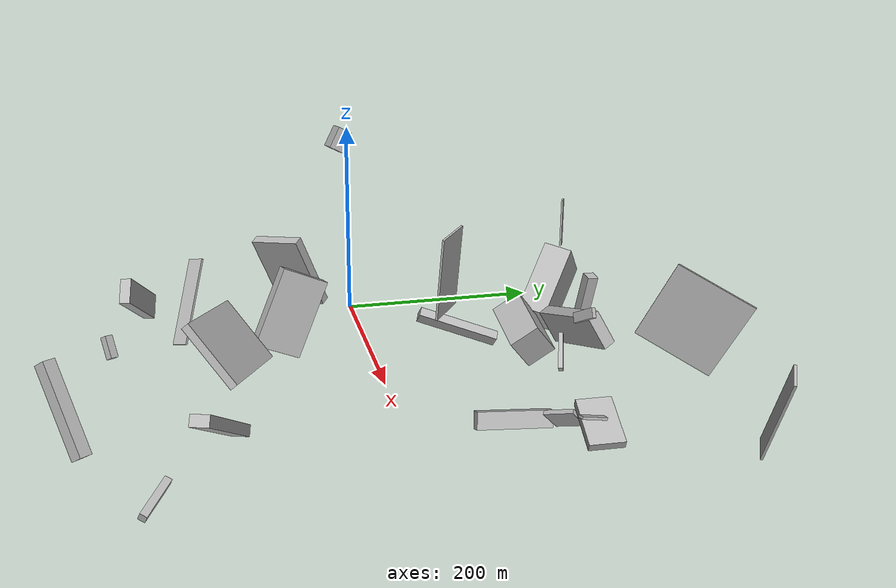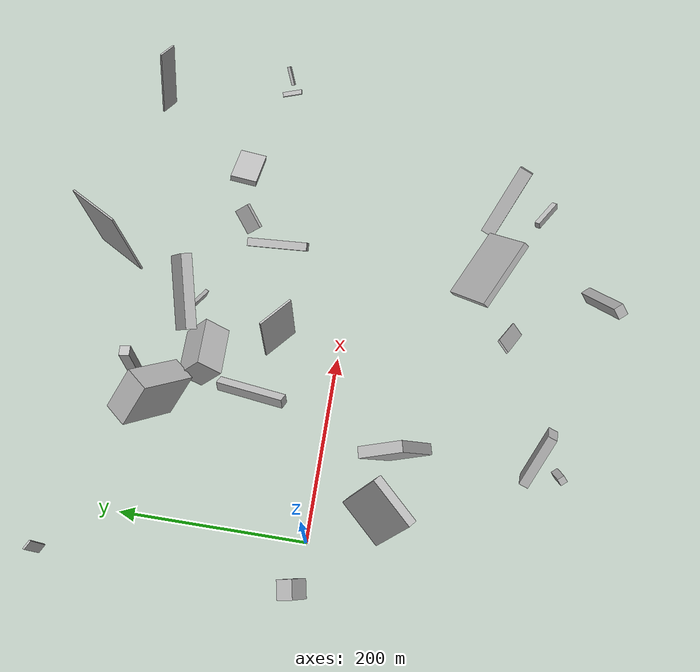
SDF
<sdf version="1.6">
 <world name="default">
  <scene>
   <sky><clouds><speed>12</speed></clouds></sky>
   <ambient>0.4 0.4 0.4 1</ambient>
   <background>0.7 0.7 0.7 1</background>
   <shadows>1</shadows>
  </scene>
  <gravity>0 0 -9.8066</gravity>
  <magnetic_field>6e-06 2.3e-05 -4.2e-05</magnetic_field>
  <physics default="0" name="default_physics" type="ode">
   <ode>
    <solver>
     <type>quick</type>
     <iters>10</iters>
     <sor>1.0</sor>
     <use_dynamic_moi_rescaling>0</use_dynamic_moi_rescaling>
    </solver>
    <constraints>
     <cfm>0</cfm>
     <erp>0.2</erp>
     <contact_max_correcting_vel>100</contact_max_correcting_vel>
     <contact_surface_layer>0.001</contact_surface_layer>
    </constraints>
   </ode>
   <max_step_size>0.004</max_step_size>
   <real_time_factor>1</real_time_factor>
   <real_time_update_rate>250</real_time_update_rate>
  </physics>
  <light name="sun" type="directional">
   <pose>0 0 10 0 0 0</pose>
   <diffuse>0.8 0.8 0.8 1</diffuse>
   <specular>0.2 0.2 0.2 1</specular>
   <attenuation>
    <range>1000</range>
    <constant>0.9</constant>
    <linear>0.01</linear>
    <quadratic>0.001</quadratic>
   </attenuation>
   <direction>-0.5 0.1 -0.9</direction>
  </light>
  <model name="building_1">
   <static>0</static>
   <pose>106.8114451734042 202.29988390373433 79.61525805529482 2.439065319526179 0.1593126482117526 0.8840049077126364</pose>
   <link name="link">
    <gravity>0</gravity>
    <pose>0 0 35.5 0 0 0</pose>
    <collision name="collision"><geometry><box><size>28 52 71</size></box></geometry></collision>
    <visual name="visual">
     <cast_shadows>0</cast_shadows>
     <geometry><box><size>28 52 71</size></box></geometry>
     <material>
      <script>
       <uri>model://HANNAS_wall/materials/scripts</uri>
       <uri>model://HANNAS_wall/materials/textures</uri>
       <name>vrc/HANNAS_wall</name>
      </script>
     </material>
    </visual>
   </link>
  </model>
  <model name="building_2">
   <static>0</static>
   <pose>264.01641516595174 232.73096955541575 89.93699475572329 -2.0110265474781843 0.08506912279195547 -0.6203733794322106</pose>
   <link name="link">
    <gravity>0</gravity>
    <pose>0 0 37.5 0 0 0</pose>
    <collision name="collision"><geometry><box><size>2 80 75</size></box></geometry></collision>
    <visual name="visual">
     <cast_shadows>0</cast_shadows>
     <geometry><box><size>2 80 75</size></box></geometry>
     <material>
      <script>
       <uri>model://HANNAS_wall/materials/scripts</uri>
       <uri>model://HANNAS_wall/materials/textures</uri>
       <name>vrc/HANNAS_wall</name>
      </script>
     </material>
    </visual>
   </link>
  </model>
  <model name="building_3">
   <static>0</static>
   <pose>320.3706038642348 86.67410220570457 15.568492796044483 -2.846178770683767 -1.2426154477532483 2.891529919681483</pose>
   <link name="link">
    <gravity>0</gravity>
    <pose>0 0 4.5 0 0 0</pose>
    <collision name="collision"><geometry><box><size>15 67 9</size></box></geometry></collision>
    <visual name="visual">
     <cast_shadows>0</cast_shadows>
     <geometry><box><size>15 67 9</size></box></geometry>
     <material>
      <script>
       <uri>model://HANNAS_wall/materials/scripts</uri>
       <uri>model://HANNAS_wall/materials/textures</uri>
       <name>vrc/HANNAS_wall</name>
      </script>
     </material>
    </visual>
   </link>
  </model>
  <model name="building_4">
   <static>0</static>
   <pose>464.3299601285972 92.82475025132327 89.81657403100824 0.11816545114768112 -0.2470704002611648 -1.3651030254040981</pose>
   <link name="link">
    <gravity>0</gravity>
    <pose>0 0 1.0 0 0 0</pose>
    <collision name="collision"><geometry><box><size>21 5 2</size></box></geometry></collision>
    <visual name="visual">
     <cast_shadows>0</cast_shadows>
     <geometry><box><size>21 5 2</size></box></geometry>
     <material>
      <script>
       <uri>model://HANNAS_wall/materials/scripts</uri>
       <uri>model://HANNAS_wall/materials/textures</uri>
       <name>vrc/HANNAS_wall</name>
      </script>
     </material>
    </visual>
   </link>
  </model>
  <model name="building_5">
   <static>0</static>
   <pose>150.85849450545206 139.22688283942827 41.54683235809905 1.9517704627986812 -0.6230878506339433 1.3925356392971509</pose>
   <link name="link">
    <gravity>0</gravity>
    <pose>0 0 27.0 0 0 0</pose>
    <collision name="collision"><geometry><box><size>30 37 54</size></box></geometry></collision>
    <visual name="visual">
     <cast_shadows>0</cast_shadows>
     <geometry><box><size>30 37 54</size></box></geometry>
     <material>
      <script>
       <uri>model://HANNAS_wall/materials/scripts</uri>
       <uri>model://HANNAS_wall/materials/textures</uri>
       <name>vrc/HANNAS_wall</name>
      </script>
     </material>
    </visual>
   </link>
  </model>
  <model name="building_6">
   <static>0</static>
   <pose>390.9256245452349 131.14962418351172 46.535219111281464 3.102873010763605 -0.43154879897633414 3.067750046886974</pose>
   <link name="link">
    <gravity>0</gravity>
    <pose>0 0 3.5 0 0 0</pose>
    <collision name="collision"><geometry><box><size>44 29 7</size></box></geometry></collision>
    <visual name="visual">
     <cast_shadows>0</cast_shadows>
     <geometry><box><size>44 29 7</size></box></geometry>
     <material>
      <script>
       <uri>model://HANNAS_wall/materials/scripts</uri>
       <uri>model://HANNAS_wall/materials/textures</uri>
       <name>vrc/HANNAS_wall</name>
      </script>
     </material>
    </visual>
   </link>
  </model>
  <model name="building_7">
   <static>0</static>
   <pose>270.0427721225229 180.02869695625546 67.0613228705994 -1.8796528274899986 -0.4241363785000378 1.9353720172926367</pose>
   <link name="link">
    <gravity>0</gravity>
    <pose>0 0 40.0 0 0 0</pose>
    <collision name="collision"><geometry><box><size>12 33 80</size></box></geometry></collision>
    <visual name="visual">
     <cast_shadows>0</cast_shadows>
     <geometry><box><size>12 33 80</size></box></geometry>
     <material>
      <script>
       <uri>model://HANNAS_wall/materials/scripts</uri>
       <uri>model://HANNAS_wall/materials/textures</uri>
       <name>vrc/HANNAS_wall</name>
      </script>
     </material>
    </visual>
   </link>
  </model>
  <model name="building_8">
   <static>0</static>
   <pose>450.18650983109455 233.3078923141543 41.76806280101778 0.1719888978547284 -0.35361433995807184 2.643794392140964</pose>
   <link name="link">
    <gravity>0</gravity>
    <pose>0 0 40.0 0 0 0</pose>
    <collision name="collision"><geometry><box><size>21 2 80</size></box></geometry></collision>
    <visual name="visual">
     <cast_shadows>0</cast_shadows>
     <geometry><box><size>21 2 80</size></box></geometry>
     <material>
      <script>
       <uri>model://HANNAS_wall/materials/scripts</uri>
       <uri>model://HANNAS_wall/materials/textures</uri>
       <name>vrc/HANNAS_wall</name>
      </script>
     </material>
    </visual>
   </link>
  </model>
  <model name="building_9">
   <static>0</static>
   <pose>297.4896868378584 -275.90688740421797 51.75085255847125 1.7285746434750013 -1.0053799066505833 -2.5541429475105155</pose>
   <link name="link">
    <gravity>0</gravity>
    <pose>0 0 5.5 0 0 0</pose>
    <collision name="collision"><geometry><box><size>80 13 11</size></box></geometry></collision>
    <visual name="visual">
     <cast_shadows>0</cast_shadows>
     <geometry><box><size>80 13 11</size></box></geometry>
     <material>
      <script>
       <uri>model://HANNAS_wall/materials/scripts</uri>
       <uri>model://HANNAS_wall/materials/textures</uri>
       <name>vrc/HANNAS_wall</name>
      </script>
     </material>
    </visual>
   </link>
  </model>
  <model name="building_10">
   <static>0</static>
   <pose>18.40427106405435 -88.36829260480138 57.35871481761565 -1.2417570006648513 -1.156939746246433 -1.044455649136795</pose>
   <link name="link">
    <gravity>0</gravity>
    <pose>0 0 28.0 0 0 0</pose>
    <collision name="collision"><geometry><box><size>80 10 56</size></box></geometry></collision>
    <visual name="visual">
     <cast_shadows>0</cast_shadows>
     <geometry><box><size>80 10 56</size></box></geometry>
     <material>
      <script>
       <uri>model://HANNAS_wall/materials/scripts</uri>
       <uri>model://HANNAS_wall/materials/textures</uri>
       <name>vrc/HANNAS_wall</name>
      </script>
     </material>
    </visual>
   </link>
  </model>
  <model name="building_11">
   <static>0</static>
   <pose>236.57757171616169 155.9644838578245 35.87848083256322 3.0155123161175124 -0.7942392482302677 2.8281876946351985</pose>
   <link name="link">
    <gravity>0</gravity>
    <pose>0 0 4.0 0 0 0</pose>
    <collision name="collision"><geometry><box><size>35 4 8</size></box></geometry></collision>
    <visual name="visual">
     <cast_shadows>0</cast_shadows>
     <geometry><box><size>35 4 8</size></box></geometry>
     <material>
      <script>
       <uri>model://HANNAS_wall/materials/scripts</uri>
       <uri>model://HANNAS_wall/materials/textures</uri>
       <name>vrc/HANNAS_wall</name>
      </script>
     </material>
    </visual>
   </link>
  </model>
  <model name="building_12">
   <static>0</static>
   <pose>108.56210828644811 -97.73479108448964 51.5547827051201 2.9600240656450647 -1.1089638353197455 1.9958146911049286</pose>
   <link name="link">
    <gravity>0</gravity>
    <pose>0 0 24.5 0 0 0</pose>
    <collision name="collision"><geometry><box><size>80 12 49</size></box></geometry></collision>
    <visual name="visual">
     <cast_shadows>0</cast_shadows>
     <geometry><box><size>80 12 49</size></box></geometry>
     <material>
      <script>
       <uri>model://HANNAS_wall/materials/scripts</uri>
       <uri>model://HANNAS_wall/materials/textures</uri>
       <name>vrc/HANNAS_wall</name>
      </script>
     </material>
    </visual>
   </link>
  </model>
  <model name="building_13">
   <static>0</static>
   <pose>-56.38207797411611 264.4129843581766 64.64729751078157 0.2355181970036769 1.54384472471279 -0.24202126437974442</pose>
   <link name="link">
    <gravity>0</gravity>
    <pose>0 0 5.0 0 0 0</pose>
    <collision name="collision"><geometry><box><size>55 2 10</size></box></geometry></collision>
    <visual name="visual">
     <cast_shadows>0</cast_shadows>
     <geometry><box><size>55 2 10</size></box></geometry>
     <material>
      <script>
       <uri>model://HANNAS_wall/materials/scripts</uri>
       <uri>model://HANNAS_wall/materials/textures</uri>
       <name>vrc/HANNAS_wall</name>
      </script>
     </material>
    </visual>
   </link>
  </model>
  <model name="building_14">
   <static>0</static>
   <pose>335.4791541293951 130.19687526761288 14.83679450395458 -0.4410621694681503 -0.6609580391315482 2.544462129224673</pose>
   <link name="link">
    <gravity>0</gravity>
    <pose>0 0 10.5 0 0 0</pose>
    <collision name="collision"><geometry><box><size>4 29 21</size></box></geometry></collision>
    <visual name="visual">
     <cast_shadows>0</cast_shadows>
     <geometry><box><size>4 29 21</size></box></geometry>
     <material>
      <script>
       <uri>model://HANNAS_wall/materials/scripts</uri>
       <uri>model://HANNAS_wall/materials/textures</uri>
       <name>vrc/HANNAS_wall</name>
      </script>
     </material>
    </visual>
   </link>
  </model>
  <model name="building_15">
   <static>0</static>
   <pose>306.8709821766845 -126.14179869657141 74.12298372859102 0.7250075010276066 -0.13003504289327533 -0.44465021078284267</pose>
   <link name="link">
    <gravity>0</gravity>
    <pose>0 0 29.5 0 0 0</pose>
    <collision name="collision"><geometry><box><size>76 7 59</size></box></geometry></collision>
    <visual name="visual">
     <cast_shadows>0</cast_shadows>
     <geometry><box><size>76 7 59</size></box></geometry>
     <material>
      <script>
       <uri>model://HANNAS_wall/materials/scripts</uri>
       <uri>model://HANNAS_wall/materials/textures</uri>
       <name>vrc/HANNAS_wall</name>
      </script>
     </material>
    </visual>
   </link>
  </model>
  <model name="building_16">
   <static>0</static>
   <pose>139.1415833033829 85.26680510134837 30.213019322559667 2.5518750172252873 -0.9309311769295299 0.3058623206459202</pose>
   <link name="link">
    <gravity>0</gravity>
    <pose>0 0 5.0 0 0 0</pose>
    <collision name="collision"><geometry><box><size>11 80 10</size></box></geometry></collision>
    <visual name="visual">
     <cast_shadows>0</cast_shadows>
     <geometry><box><size>11 80 10</size></box></geometry>
     <material>
      <script>
       <uri>model://HANNAS_wall/materials/scripts</uri>
       <uri>model://HANNAS_wall/materials/textures</uri>
       <name>vrc/HANNAS_wall</name>
      </script>
     </material>
    </visual>
   </link>
  </model>
  <model name="building_17">
   <static>0</static>
   <pose>-65.31532295637962 -2.640429400652773 175.10543306998932 1.4850525883332202 0.5172819868384391 1.7337726683667234</pose>
   <link name="link">
    <gravity>0</gravity>
    <pose>0 0 9.0 0 0 0</pose>
    <collision name="collision"><geometry><box><size>16 24 18</size></box></geometry></collision>
    <visual name="visual">
     <cast_shadows>0</cast_shadows>
     <geometry><box><size>16 24 18</size></box></geometry>
     <material>
      <script>
       <uri>model://HANNAS_wall/materials/scripts</uri>
       <uri>model://HANNAS_wall/materials/textures</uri>
       <name>vrc/HANNAS_wall</name>
      </script>
     </material>
    </visual>
   </link>
  </model>
  <model name="building_18">
   <static>0</static>
   <pose>91.83650033834692 -208.92976958997457 53.43789544216703 0.1689055126135032 0.9467818303876407 -0.18633940014094763</pose>
   <link name="link">
    <gravity>0</gravity>
    <pose>0 0 30.0 0 0 0</pose>
    <collision name="collision"><geometry><box><size>23 10 60</size></box></geometry></collision>
    <visual name="visual">
     <cast_shadows>0</cast_shadows>
     <geometry><box><size>23 10 60</size></box></geometry>
     <material>
      <script>
       <uri>model://HANNAS_wall/materials/scripts</uri>
       <uri>model://HANNAS_wall/materials/textures</uri>
       <name>vrc/HANNAS_wall</name>
      </script>
     </material>
    </visual>
   </link>
  </model>
  <model name="building_19">
   <static>0</static>
   <pose>353.2033538284719 -139.93594034496226 49.587955005945915 1.0068680179522314 -0.05998301279775554 1.1639827209319156</pose>
   <link name="link">
    <gravity>0</gravity>
    <pose>0 0 40.0 0 0 0</pose>
    <collision name="collision"><geometry><box><size>15 9 80</size></box></geometry></collision>
    <visual name="visual">
     <cast_shadows>0</cast_shadows>
     <geometry><box><size>15 9 80</size></box></geometry>
     <material>
      <script>
       <uri>model://HANNAS_wall/materials/scripts</uri>
       <uri>model://HANNAS_wall/materials/textures</uri>
       <name>vrc/HANNAS_wall</name>
      </script>
     </material>
    </visual>
   </link>
  </model>
  <model name="building_20">
   <static>0</static>
   <pose>196.05948703649165 59.75782434703979 104.03076709606168 1.6857466915112047 -0.07863977719579611 2.4448691490709513</pose>
   <link name="link">
    <gravity>0</gravity>
    <pose>0 0 1.0 0 0 0</pose>
    <collision name="collision"><geometry><box><size>39 80 2</size></box></geometry></collision>
    <visual name="visual">
     <cast_shadows>0</cast_shadows>
     <geometry><box><size>39 80 2</size></box></geometry>
     <material>
      <script>
       <uri>model://HANNAS_wall/materials/scripts</uri>
       <uri>model://HANNAS_wall/materials/textures</uri>
       <name>vrc/HANNAS_wall</name>
      </script>
     </material>
    </visual>
   </link>
  </model>
  <model name="building_21">
   <static>0</static>
   <pose>396.0462686511748 -202.57244926957284 27.494612791868427 -2.6511831786303666 -0.2646134878018402 2.6150675422593244</pose>
   <link name="link">
    <gravity>0</gravity>
    <pose>0 0 3.5 0 0 0</pose>
    <collision name="collision"><geometry><box><size>37 6 7</size></box></geometry></collision>
    <visual name="visual">
     <cast_shadows>0</cast_shadows>
     <geometry><box><size>37 6 7</size></box></geometry>
     <material>
      <script>
       <uri>model://HANNAS_wall/materials/scripts</uri>
       <uri>model://HANNAS_wall/materials/textures</uri>
       <name>vrc/HANNAS_wall</name>
      </script>
     </material>
    </visual>
   </link>
  </model>
  <model name="building_22">
   <static>0</static>
   <pose>242.61654784445523 -181.0188219705689 75.54252064974585 -0.5685121545118942 -0.22488019971901763 0.7880825136355138</pose>
   <link name="link">
    <gravity>0</gravity>
    <pose>0 0 37.0 0 0 0</pose>
    <collision name="collision"><geometry><box><size>15 2 74</size></box></geometry></collision>
    <visual name="visual">
     <cast_shadows>0</cast_shadows>
     <geometry><box><size>15 2 74</size></box></geometry>
     <material>
      <script>
       <uri>model://HANNAS_wall/materials/scripts</uri>
       <uri>model://HANNAS_wall/materials/textures</uri>
       <name>vrc/HANNAS_wall</name>
      </script>
     </material>
    </visual>
   </link>
  </model>
  <model name="building_23">
   <static>0</static>
   <pose>150.50471138528144 217.82055365758288 49.40596345880374 1.483278603673776 0.18733489254968314 0.10320805163847815</pose>
   <link name="link">
    <gravity>0</gravity>
    <pose>0 0 5.5 0 0 0</pose>
    <collision name="collision"><geometry><box><size>11 51 11</size></box></geometry></collision>
    <visual name="visual">
     <cast_shadows>0</cast_shadows>
     <geometry><box><size>11 51 11</size></box></geometry>
     <material>
      <script>
       <uri>model://HANNAS_wall/materials/scripts</uri>
       <uri>model://HANNAS_wall/materials/textures</uri>
       <name>vrc/HANNAS_wall</name>
      </script>
     </material>
    </visual>
   </link>
  </model>
  <model name="building_24">
   <static>0</static>
   <pose>110.01315485949242 -252.13081576772083 21.9680588103618 -1.877122625616907 1.0434949046277429 0.4257981205475356</pose>
   <link name="link">
    <gravity>0</gravity>
    <pose>0 0 4.0 0 0 0</pose>
    <collision name="collision"><geometry><box><size>22 8 8</size></box></geometry></collision>
    <visual name="visual">
     <cast_shadows>0</cast_shadows>
     <geometry><box><size>22 8 8</size></box></geometry>
     <material>
      <script>
       <uri>model://HANNAS_wall/materials/scripts</uri>
       <uri>model://HANNAS_wall/materials/textures</uri>
       <name>vrc/HANNAS_wall</name>
      </script>
     </material>
    </visual>
   </link>
  </model>
  <model name="building_25">
   <static>0</static>
   <pose>446.86946103704975 88.83705943591566 162.99222274534478 2.859090694965969 -0.5021049653660883 0.42709795116127036</pose>
   <link name="link">
    <gravity>0</gravity>
    <pose>0 0 3.5 0 0 0</pose>
    <collision name="collision"><geometry><box><size>19 3 7</size></box></geometry></collision>
    <visual name="visual">
     <cast_shadows>0</cast_shadows>
     <geometry><box><size>19 3 7</size></box></geometry>
     <material>
      <script>
       <uri>model://HANNAS_wall/materials/scripts</uri>
       <uri>model://HANNAS_wall/materials/textures</uri>
       <name>vrc/HANNAS_wall</name>
      </script>
     </material>
    </visual>
   </link>
  </model>
 </world>
</sdf>
